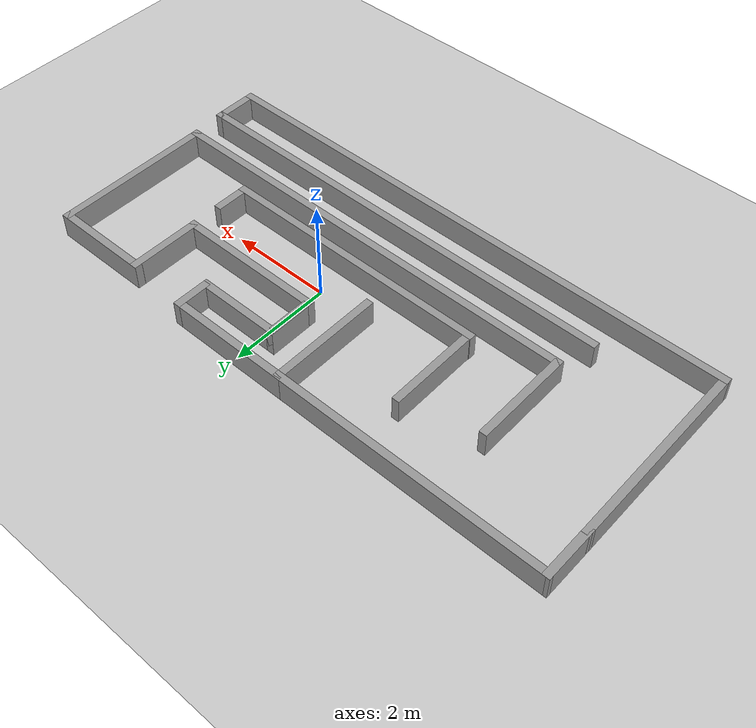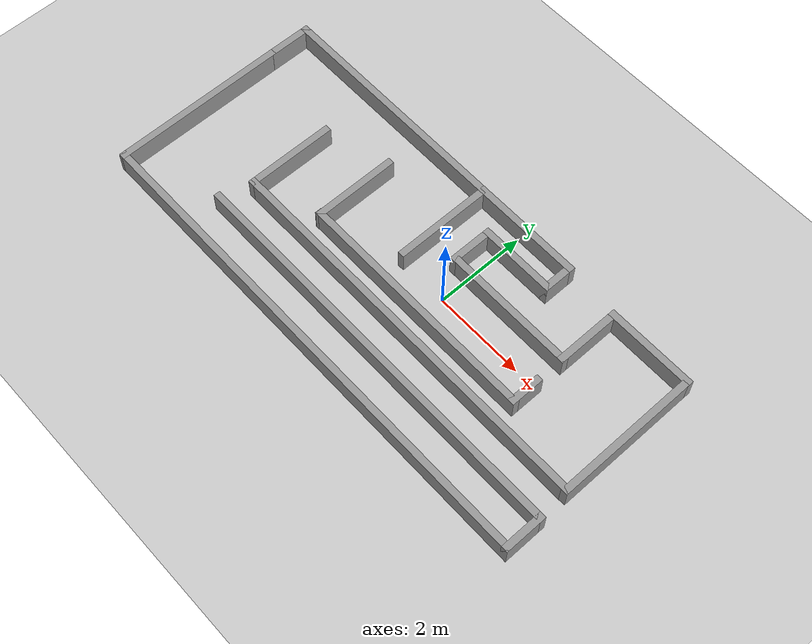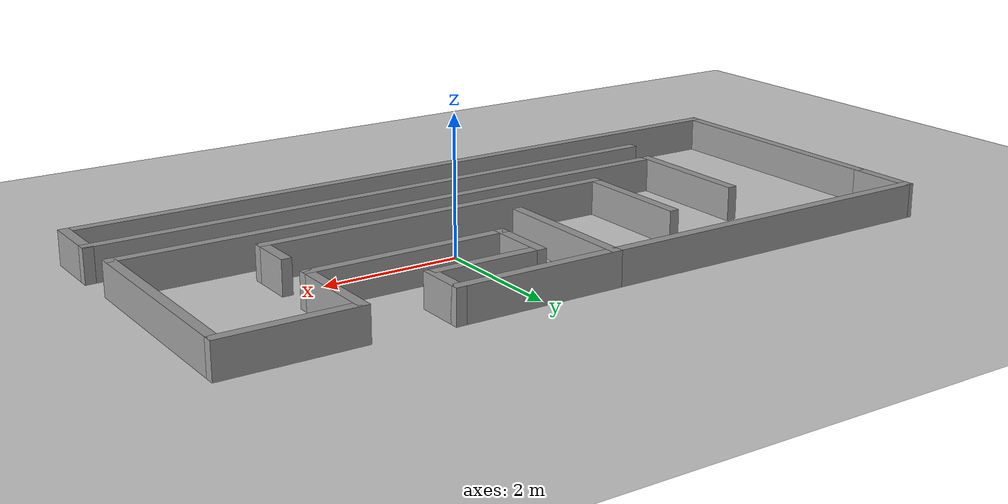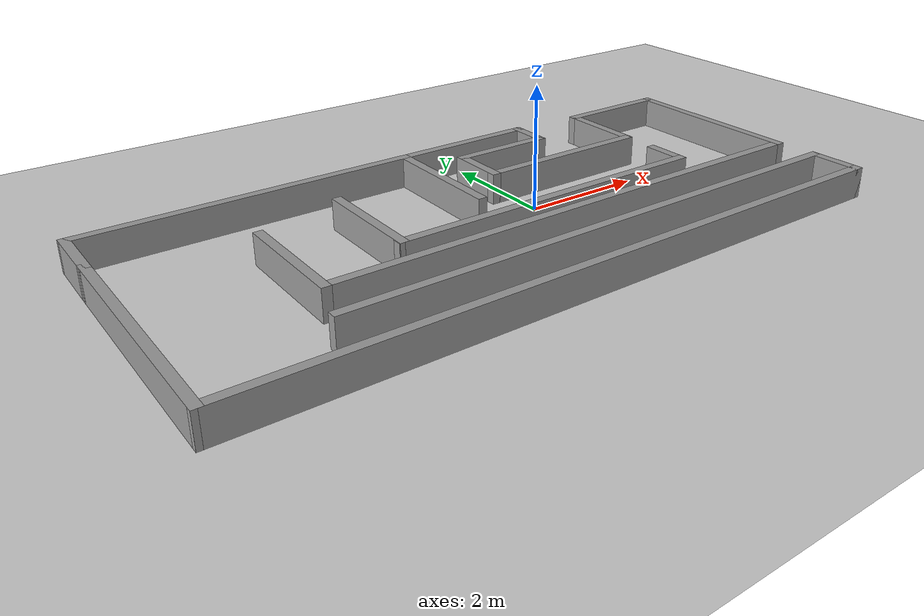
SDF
<sdf version="1.7">
 <world name="default">
  <plugin name="gazebo_ros_state" filename="libgazebo_ros_state.so">
   <ros><namespace>/gazebo</namespace></ros>
   <update_rate>1.0</update_rate>
  </plugin>
  <light name="sun" type="directional">
   <pose>0 0 10 0 -0 0</pose>
   <diffuse>0.8 0.8 0.8 1</diffuse>
   <specular>0.2 0.2 0.2 1</specular>
   <attenuation>
    <range>1000</range>
    <constant>0.9</constant>
    <linear>0.01</linear>
    <quadratic>0.001</quadratic>
   </attenuation>
   <direction>-0.5 0.1 -0.9</direction>
   <spot><inner_angle>0</inner_angle><outer_angle>0</outer_angle><falloff>0</falloff></spot>
  </light>
  <model name="ground_plane">
   <static>1</static>
   <link name="link">
    <collision name="collision">
     <geometry><plane><normal>0 0 1</normal><size>100 100</size></plane></geometry>
     <surface>
      <contact><collide_bitmask>65535</collide_bitmask></contact>
      <friction><ode><mu>100</mu><mu2>50</mu2></ode></friction>
     </surface>
    </collision>
    <visual name="visual">
     <cast_shadows>0</cast_shadows>
     <geometry><plane><normal>0 0 1</normal><size>100 100</size></plane></geometry>
     <material>
      <script><uri>file://media/materials/scripts/gazebo.material</uri><name>Gazebo/Grey</name></script>
     </material>
    </visual>
   </link>
  </model>
  <gravity>0 0 -9.8</gravity>
  <magnetic_field>6e-06 2.3e-05 -4.2e-05</magnetic_field>
  <atmosphere type="adiabatic"/>
  <physics type="ode">
   <max_step_size>0.001</max_step_size>
   <real_time_factor>1</real_time_factor>
   <real_time_update_rate>1000</real_time_update_rate>
  </physics>
  <scene><ambient>0.4 0.4 0.4 1</ambient><background>0.7 0.7 0.7 1</background><shadows>1</shadows></scene>
  <spherical_coordinates>
   <surface_model>EARTH_WGS84</surface_model>
   <latitude_deg>0</latitude_deg>
   <longitude_deg>0</longitude_deg>
   <elevation>0</elevation>
   <heading_deg>0</heading_deg>
  </spherical_coordinates>
  <audio><device>default</device></audio>
  <model name="walls">
   <pose>-1 -0.1 -1 0 -0 0</pose>
   <link name="Wall_0">
    <collision name="Wall_0_Collision">
     <geometry><box><size>2 0.15 0.5</size></box></geometry>
     <pose>0 0 1.25 0 -0 0</pose>
    </collision>
    <visual name="Wall_0_Visual">
     <pose>0 0 1.25 0 -0 0</pose>
     <geometry><box><size>2 0.15 0.5</size></box></geometry>
     <material>
      <script><uri>file://media/materials/scripts/gazebo.material</uri><name>Gazebo/Grey</name></script>
      <ambient>1 1 1 1</ambient>
     </material>
     <meta><layer>0</layer></meta>
    </visual>
    <pose>-3.22301 -0.102463 0 0 -0 -1.5708</pose>
   </link>
   <link name="Wall_1">
    <collision name="Wall_1_Collision">
     <geometry><box><size>8.75 0.15 0.5</size></box></geometry>
     <pose>0 0 1.25 0 -0 0</pose>
    </collision>
    <visual name="Wall_1_Visual">
     <pose>0 0 1.25 0 -0 0</pose>
     <geometry><box><size>8.75 0.15 0.5</size></box></geometry>
     <material>
      <script><uri>file://media/materials/scripts/gazebo.material</uri><name>Gazebo/Grey</name></script>
      <ambient>1 1 1 1</ambient>
     </material>
     <meta><layer>0</layer></meta>
    </visual>
    <pose>1.07699 -1.02746 0 0 -0 0</pose>
   </link>
   <link name="Wall_10">
    <collision name="Wall_10_Collision">
     <geometry><box><size>2.25 0.15 0.5</size></box></geometry>
     <pose>0 0 1.25 0 -0 0</pose>
    </collision>
    <visual name="Wall_10_Visual">
     <pose>0 0 1.25 0 -0 0</pose>
     <geometry><box><size>2.25 0.15 0.5</size></box></geometry>
     <material>
      <script><uri>file://media/materials/scripts/gazebo.material</uri><name>Gazebo/Grey</name></script>
      <ambient>1 1 1 1</ambient>
     </material>
     <meta><layer>0</layer></meta>
    </visual>
    <pose>-0.07301 1.12254 0 0 -0 -1.5708</pose>
   </link>
   <link name="Wall_12">
    <collision name="Wall_12_Collision">
     <geometry><box><size>0.75 0.15 0.5</size></box></geometry>
     <pose>0 0 1.25 0 -0 0</pose>
    </collision>
    <visual name="Wall_12_Visual">
     <pose>0 0 1.25 0 -0 0</pose>
     <geometry><box><size>0.75 0.15 0.5</size></box></geometry>
     <material>
      <script><uri>file://media/materials/scripts/gazebo.material</uri><name>Gazebo/Grey</name></script>
      <ambient>1 1 1 1</ambient>
     </material>
     <meta><layer>0</layer></meta>
    </visual>
    <pose>3.52699 -0.227463 0 0 -0 -1.5708</pose>
   </link>
   <link name="Wall_13">
    <collision name="Wall_13_Collision">
     <geometry><box><size>5.4805 0.15 0.5</size></box></geometry>
     <pose>0 0 1.25 0 -0 0</pose>
    </collision>
    <visual name="Wall_13_Visual">
     <pose>0 0 1.25 0 -0 0</pose>
     <geometry><box><size>5.4805 0.15 0.5</size></box></geometry>
     <material>
      <script><uri>file://media/materials/scripts/gazebo.material</uri><name>Gazebo/Grey</name></script>
      <ambient>1 1 1 1</ambient>
     </material>
     <meta><layer>0</layer></meta>
    </visual>
    <pose>0.86174 -0.527463 0 0 -0 3.14159</pose>
   </link>
   <link name="Wall_14">
    <collision name="Wall_14_Collision">
     <geometry><box><size>1.90744 0.15 0.5</size></box></geometry>
     <pose>0 0 1.25 0 -0 0</pose>
    </collision>
    <visual name="Wall_14_Visual">
     <pose>0 0 1.25 0 -0 0</pose>
     <geometry><box><size>1.90744 0.15 0.5</size></box></geometry>
     <material>
      <script><uri>file://media/materials/scripts/gazebo.material</uri><name>Gazebo/Grey</name></script>
      <ambient>1 1 1 1</ambient>
     </material>
     <meta><layer>0</layer></meta>
    </visual>
    <pose>-1.79385 0.351254 0 0 -0 1.57289</pose>
   </link>
   <link name="Wall_16">
    <collision name="Wall_16_Collision">
     <geometry><box><size>3.90744 0.15 0.5</size></box></geometry>
     <pose>0 0 1.25 0 -0 0</pose>
    </collision>
    <visual name="Wall_16_Visual">
     <pose>0 0 1.25 0 -0 0</pose>
     <geometry><box><size>3.90744 0.15 0.5</size></box></geometry>
     <material>
      <script><uri>file://media/materials/scripts/gazebo.material</uri><name>Gazebo/Grey</name></script>
      <ambient>1 1 1 1</ambient>
     </material>
     <meta><layer>0</layer></meta>
    </visual>
    <pose>-5.42485 -0.648746 0 0 -0 -1.56981</pose>
   </link>
   <link name="Wall_17">
    <collision name="Wall_17_Collision">
     <geometry><box><size>11 0.15 0.5</size></box></geometry>
     <pose>0 0 1.25 0 -0 0</pose>
    </collision>
    <visual name="Wall_17_Visual">
     <pose>0 0 1.25 0 -0 0</pose>
     <geometry><box><size>11 0.15 0.5</size></box></geometry>
     <material>
      <script><uri>file://media/materials/scripts/gazebo.material</uri><name>Gazebo/Grey</name></script>
      <ambient>1 1 1 1</ambient>
     </material>
     <meta><layer>0</layer></meta>
    </visual>
    <pose>0.00199 -2.52746 0 0 -0 0</pose>
   </link>
   <link name="Wall_18">
    <collision name="Wall_18_Collision">
     <geometry><box><size>0.94 0.15 0.5</size></box></geometry>
     <pose>0 0 1.25 0 -0 0</pose>
    </collision>
    <visual name="Wall_18_Visual">
     <pose>0 0 1.25 0 -0 0</pose>
     <geometry><box><size>0.94 0.15 0.5</size></box></geometry>
     <material>
      <script><uri>file://media/materials/scripts/gazebo.material</uri><name>Gazebo/Grey</name></script>
      <ambient>1 1 1 1</ambient>
     </material>
     <meta><layer>0</layer></meta>
    </visual>
    <pose>5.42699 -2.13246 0 0 -0 1.5708</pose>
   </link>
   <link name="Wall_19">
    <collision name="Wall_19_Collision">
     <geometry><box><size>9 0.15 0.5</size></box></geometry>
     <pose>0 0 1.25 0 -0 0</pose>
    </collision>
    <visual name="Wall_19_Visual">
     <pose>0 0 1.25 0 -0 0</pose>
     <geometry><box><size>9 0.15 0.5</size></box></geometry>
     <material>
      <script><uri>file://media/materials/scripts/gazebo.material</uri><name>Gazebo/Grey</name></script>
      <ambient>1 1 1 1</ambient>
     </material>
     <meta><layer>0</layer></meta>
    </visual>
    <pose>1.00199 -1.73746 0 0 -0 3.14159</pose>
   </link>
   <link name="Wall_2">
    <collision name="Wall_2_Collision">
     <geometry><box><size>3.25 0.15 0.5</size></box></geometry>
     <pose>0 0 1.25 0 -0 0</pose>
    </collision>
    <visual name="Wall_2_Visual">
     <pose>0 0 1.25 0 -0 0</pose>
     <geometry><box><size>3.25 0.15 0.5</size></box></geometry>
     <material>
      <script><uri>file://media/materials/scripts/gazebo.material</uri><name>Gazebo/Grey</name></script>
      <ambient>1 1 1 1</ambient>
     </material>
     <meta><layer>0</layer></meta>
    </visual>
    <pose>5.37699 0.522537 0 0 -0 1.5708</pose>
   </link>
   <link name="Wall_21">
    <collision name="Wall_21_Collision">
     <geometry><box><size>5.5 0.15 0.5</size></box></geometry>
     <pose>0 0 1.25 0 -0 0</pose>
    </collision>
    <visual name="Wall_21_Visual">
     <pose>0 0 1.25 0 -0 0</pose>
     <geometry><box><size>5.5 0.15 0.5</size></box></geometry>
     <material>
      <script><uri>file://media/materials/scripts/gazebo.material</uri><name>Gazebo/Grey</name></script>
      <ambient>1 1 1 1</ambient>
     </material>
     <meta><layer>0</layer></meta>
    </visual>
    <pose>-2.74801 2.17254 0 0 -0 3.14159</pose>
   </link>
   <link name="Wall_22">
    <collision name="Wall_22_Collision">
     <geometry><box><size>1.09257 0.15 0.5</size></box></geometry>
     <pose>0 0 1.25 0 -0 0</pose>
    </collision>
    <visual name="Wall_22_Visual">
     <pose>0 0 1.25 0 -0 0</pose>
     <geometry><box><size>1.09257 0.15 0.5</size></box></geometry>
     <material>
      <script><uri>file://media/materials/scripts/gazebo.material</uri><name>Gazebo/Grey</name></script>
      <ambient>1 1 1 1</ambient>
     </material>
     <meta><layer>0</layer></meta>
    </visual>
    <pose>-5.42485 1.70125 0 0 -0 -1.57471</pose>
   </link>
   <link name="Wall_3">
    <collision name="Wall_3_Collision">
     <geometry><box><size>2 0.15 0.5</size></box></geometry>
     <pose>0 0 1.25 0 -0 0</pose>
    </collision>
    <visual name="Wall_3_Visual">
     <pose>0 0 1.25 0 -0 0</pose>
     <geometry><box><size>2 0.15 0.5</size></box></geometry>
     <material>
      <script><uri>file://media/materials/scripts/gazebo.material</uri><name>Gazebo/Grey</name></script>
      <ambient>1 1 1 1</ambient>
     </material>
     <meta><layer>0</layer></meta>
    </visual>
    <pose>4.45199 2.07254 0 0 -0 3.14159</pose>
   </link>
   <link name="Wall_4">
    <collision name="Wall_4_Collision">
     <geometry><box><size>1.5 0.15 0.5</size></box></geometry>
     <pose>0 0 1.25 0 -0 0</pose>
    </collision>
    <visual name="Wall_4_Visual">
     <pose>0 0 1.25 0 -0 0</pose>
     <geometry><box><size>1.5 0.15 0.5</size></box></geometry>
     <material>
      <script><uri>file://media/materials/scripts/gazebo.material</uri><name>Gazebo/Grey</name></script>
      <ambient>1 1 1 1</ambient>
     </material>
     <meta><layer>0</layer></meta>
    </visual>
    <pose>3.52699 1.39754 0 0 -0 -1.5708</pose>
   </link>
   <link name="Wall_5">
    <collision name="Wall_5_Collision">
     <geometry><box><size>3 0.15 0.5</size></box></geometry>
     <pose>0 0 1.25 0 -0 0</pose>
    </collision>
    <visual name="Wall_5_Visual">
     <pose>0 0 1.25 0 -0 0</pose>
     <geometry><box><size>3 0.15 0.5</size></box></geometry>
     <material>
      <script><uri>file://media/materials/scripts/gazebo.material</uri><name>Gazebo/Grey</name></script>
      <ambient>1 1 1 1</ambient>
     </material>
     <meta><layer>0</layer></meta>
    </visual>
    <pose>2.10199 0.722537 0 0 -0 3.14159</pose>
   </link>
   <link name="Wall_6">
    <collision name="Wall_6_Collision">
     <geometry><box><size>1 0.15 0.5</size></box></geometry>
     <pose>0 0 1.25 0 -0 0</pose>
    </collision>
    <visual name="Wall_6_Visual">
     <pose>0 0 1.25 0 -0 0</pose>
     <geometry><box><size>1 0.15 0.5</size></box></geometry>
     <material>
      <script><uri>file://media/materials/scripts/gazebo.material</uri><name>Gazebo/Grey</name></script>
      <ambient>1 1 1 1</ambient>
     </material>
     <meta><layer>0</layer></meta>
    </visual>
    <pose>0.67699 1.14754 0 0 -0 1.5708</pose>
   </link>
   <link name="Wall_7">
    <collision name="Wall_7_Collision">
     <geometry><box><size>1.75 0.15 0.5</size></box></geometry>
     <pose>0 0 1.25 0 -0 0</pose>
    </collision>
    <visual name="Wall_7_Visual">
     <pose>0 0 1.25 0 -0 0</pose>
     <geometry><box><size>1.75 0.15 0.5</size></box></geometry>
     <material>
      <script><uri>file://media/materials/scripts/gazebo.material</uri><name>Gazebo/Grey</name></script>
      <ambient>1 1 1 1</ambient>
     </material>
     <meta><layer>0</layer></meta>
    </visual>
    <pose>1.47699 1.57254 0 0 -0 0</pose>
   </link>
   <link name="Wall_8">
    <collision name="Wall_8_Collision">
     <geometry><box><size>0.75 0.15 0.5</size></box></geometry>
     <pose>0 0 1.25 0 -0 0</pose>
    </collision>
    <visual name="Wall_8_Visual">
     <pose>0 0 1.25 0 -0 0</pose>
     <geometry><box><size>0.75 0.15 0.5</size></box></geometry>
     <material>
      <script><uri>file://media/materials/scripts/gazebo.material</uri><name>Gazebo/Grey</name></script>
      <ambient>1 1 1 1</ambient>
     </material>
     <meta><layer>0</layer></meta>
    </visual>
    <pose>2.27699 1.87254 0 0 -0 1.5708</pose>
   </link>
   <link name="Wall_9">
    <collision name="Wall_9_Collision">
     <geometry><box><size>2.5 0.15 0.5</size></box></geometry>
     <pose>0 0 1.25 0 -0 0</pose>
    </collision>
    <visual name="Wall_9_Visual">
     <pose>0 0 1.25 0 -0 0</pose>
     <geometry><box><size>2.5 0.15 0.5</size></box></geometry>
     <material>
      <script><uri>file://media/materials/scripts/gazebo.material</uri><name>Gazebo/Grey</name></script>
      <ambient>1 1 1 1</ambient>
     </material>
     <meta><layer>0</layer></meta>
    </visual>
    <pose>1.10199 2.17254 0 0 -0 3.14159</pose>
   </link>
   <static>1</static>
  </model>
 </world>
</sdf>
